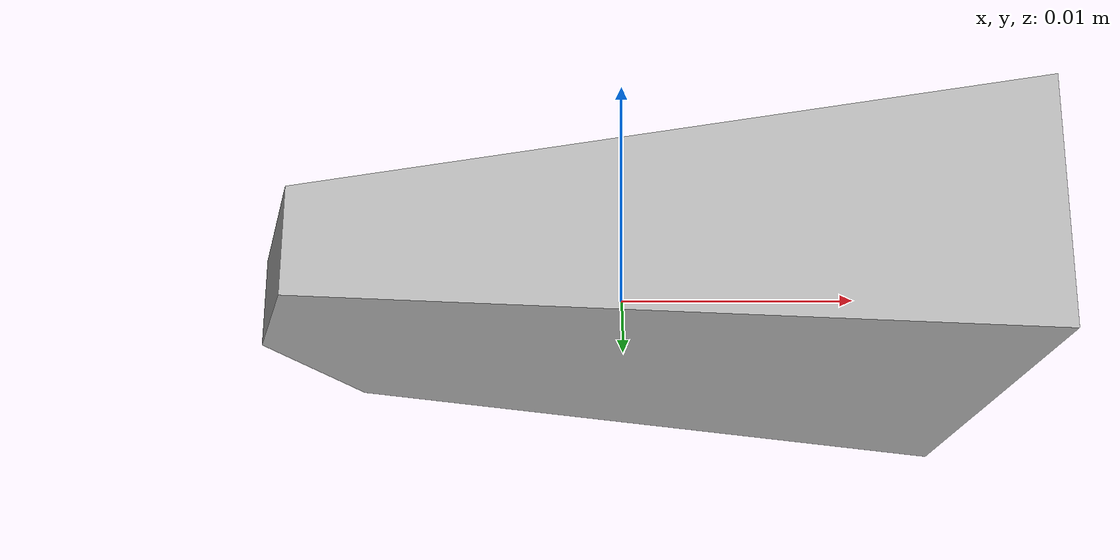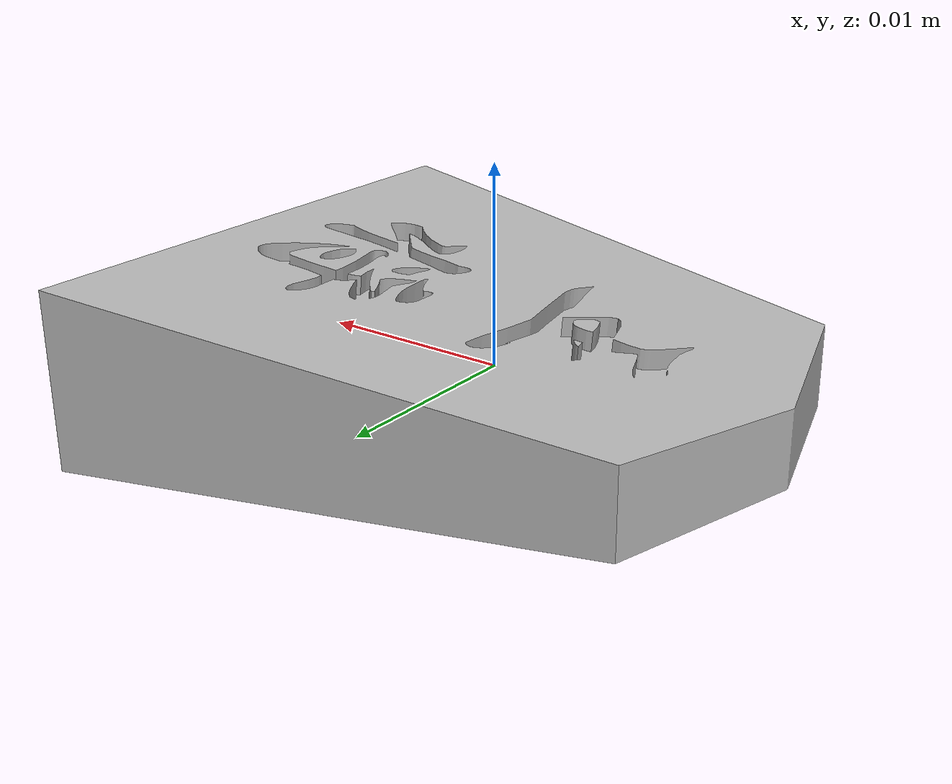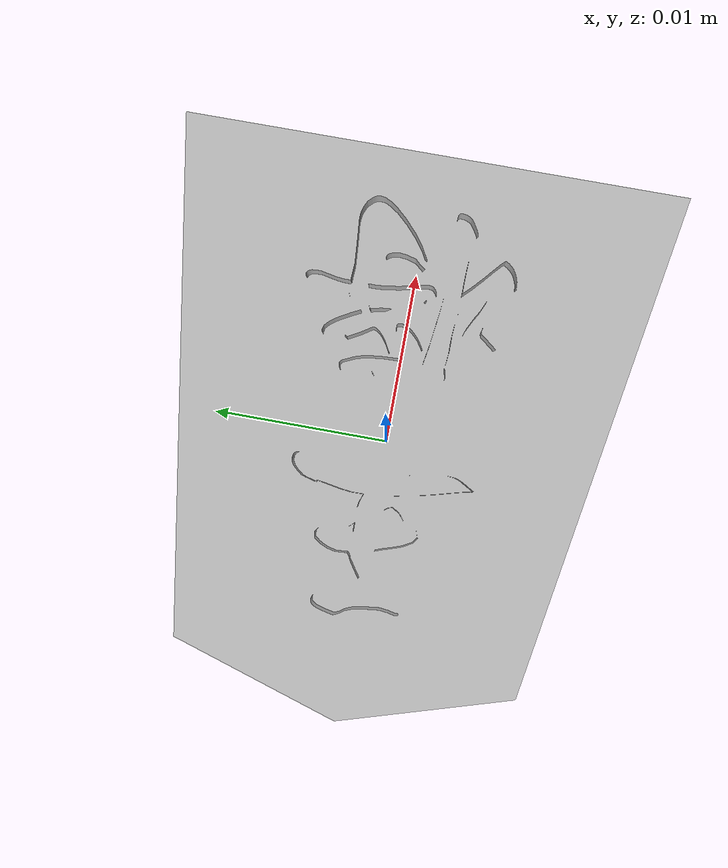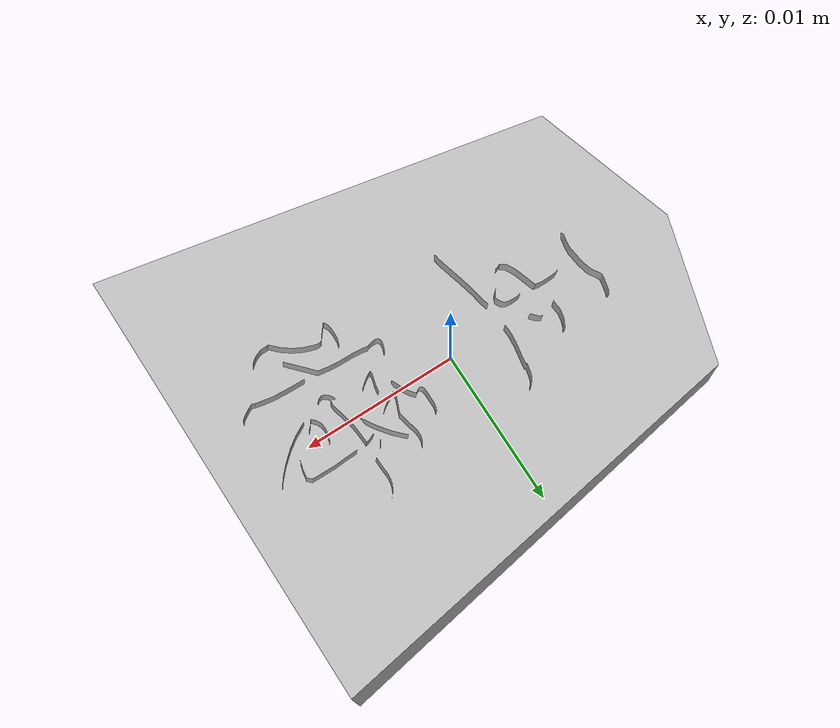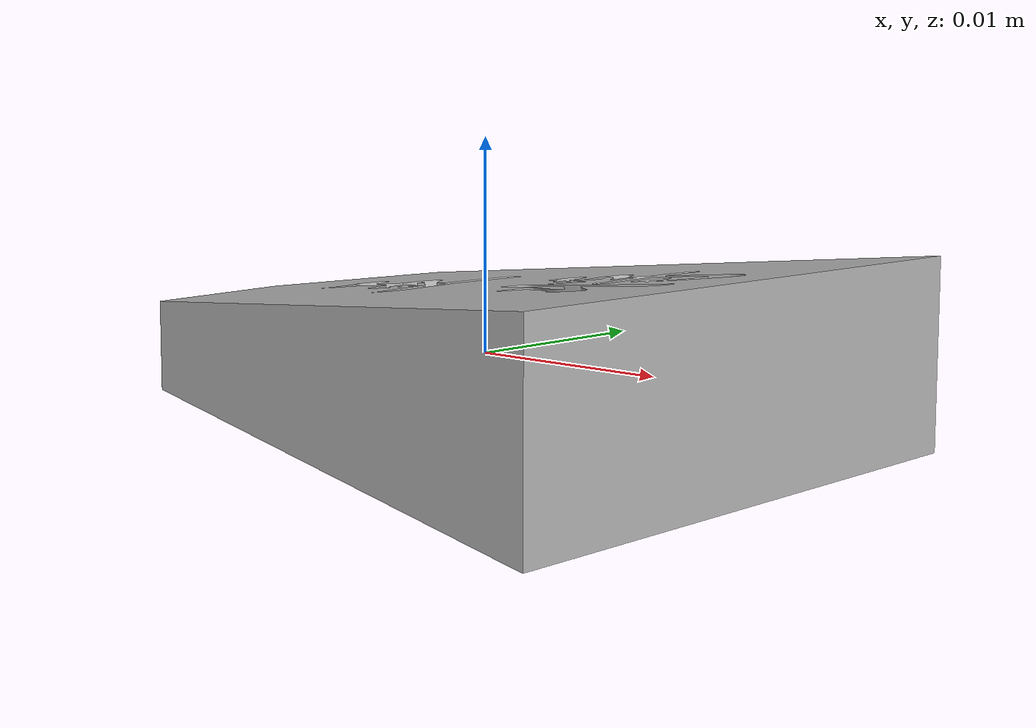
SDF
<?xml version="1.0" ?>
<sdf version="1.4">
  <model name="Shogi King">
    <link name="shogi_king_link">
      <inertial>
        <pose>0.0 0.0 0.0046 0 0 0</pose>
        <mass>0.001</mass>
        <inertia>
          <ixx>0.000000145416</ixx>
          <ixy>0</ixy>
          <ixz>0</ixz>
          <iyy>0.000000087136</iyy>
          <iyz>0</iyz>
          <izz>0.000000072386</izz>
        </inertia>
      </inertial>

      <visual name="shogi_king_visual">
        <pose>0 0 0 0 0 3.1415</pose>
        <geometry>
          <mesh>
            <uri>model://shogi_king/meshes/shogi_king.stl</uri>
          </mesh>
        </geometry>
      </visual>

      <collision name="shogi_king_collision">
        <pose>0 0 0 0 0 3.1415</pose>
        <geometry>
          <mesh>
            <uri>model://shogi_king/meshes/shogi_king.stl</uri>
          </mesh>
        </geometry>
      </collision>

    </link>
  </model>
</sdf>
